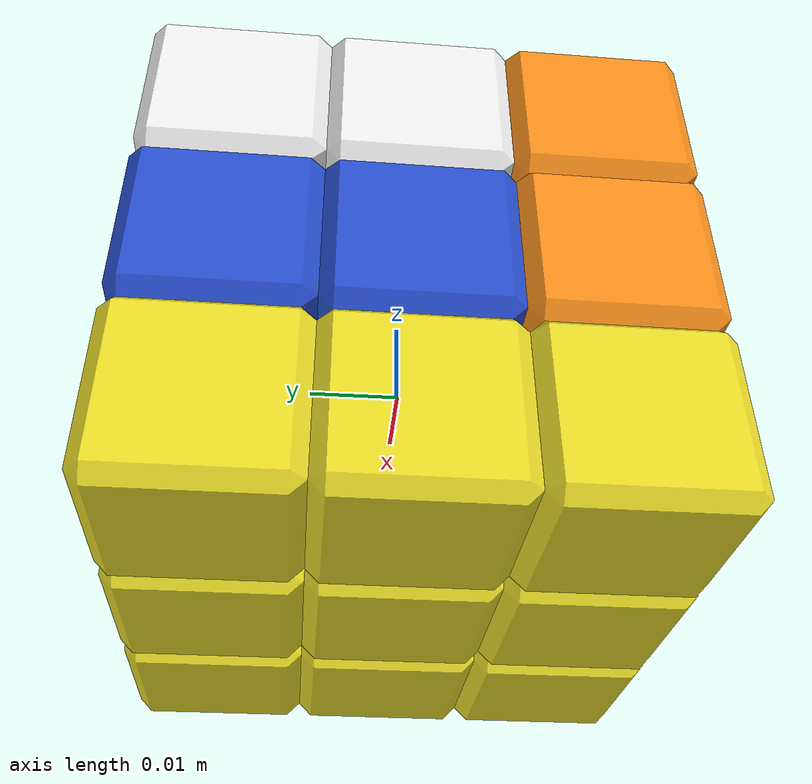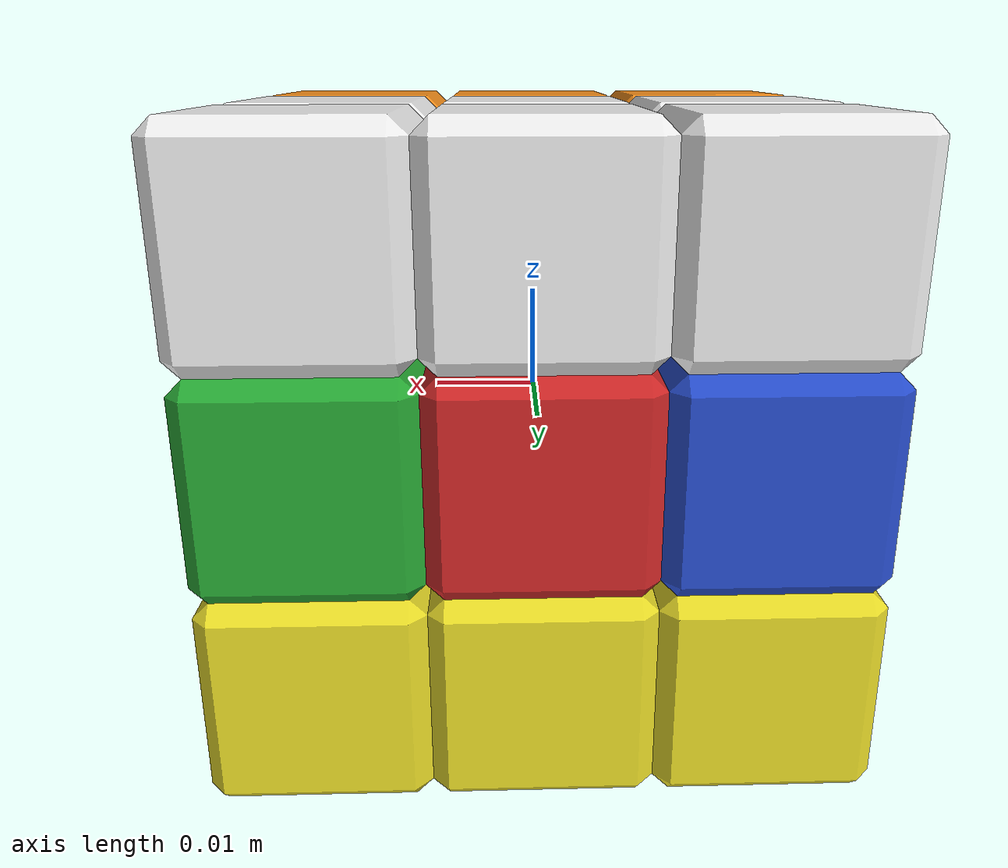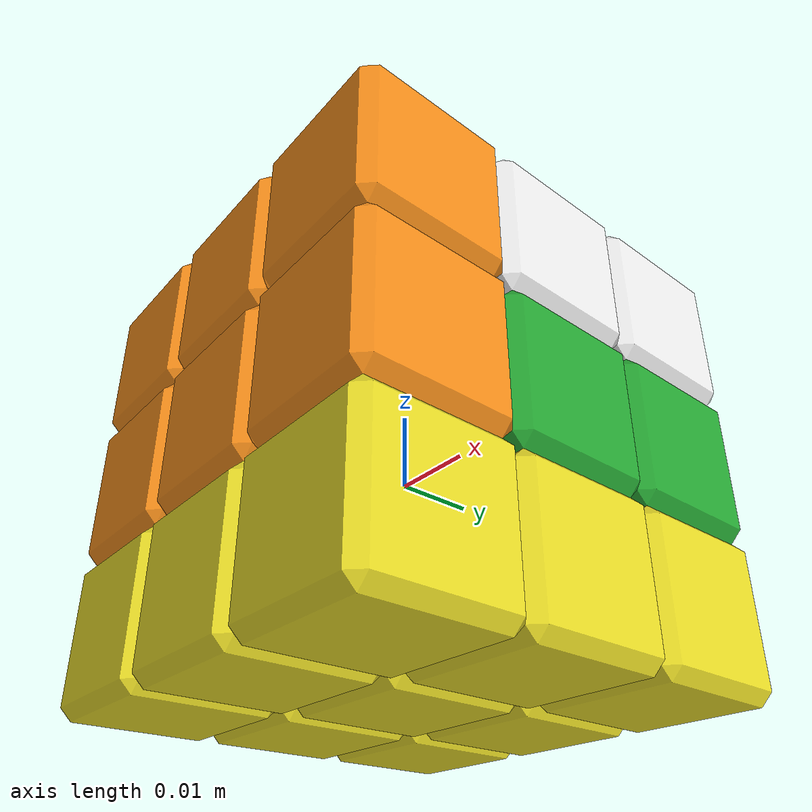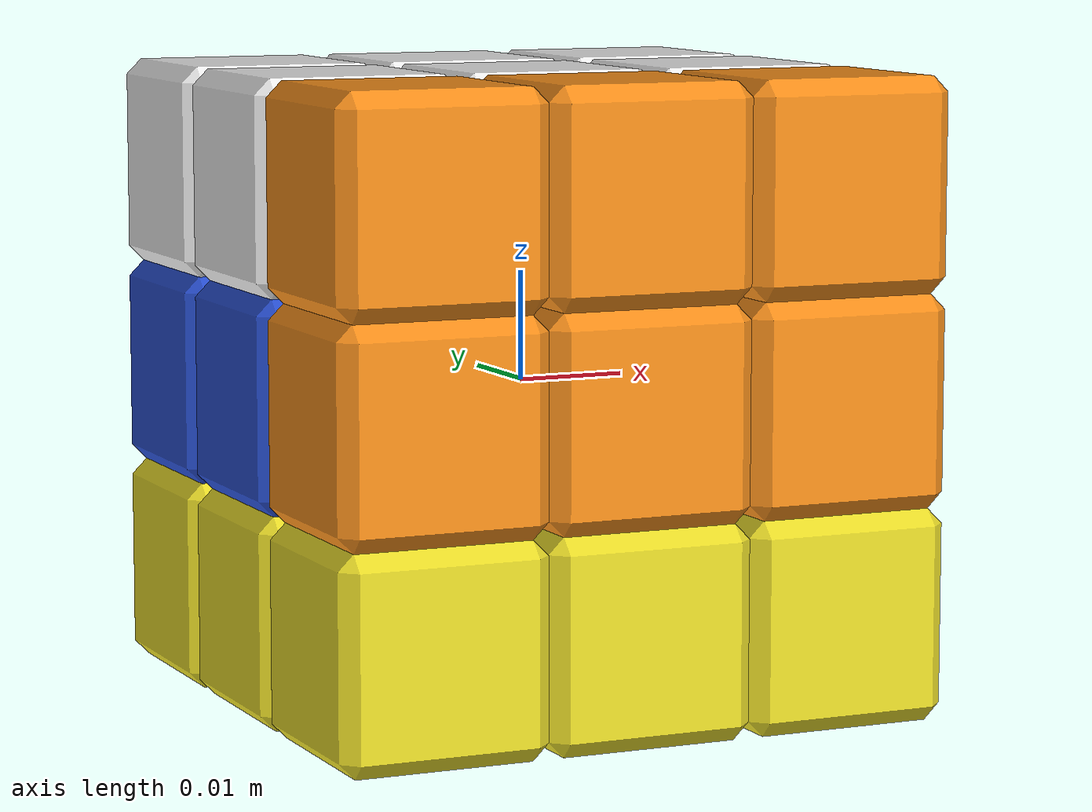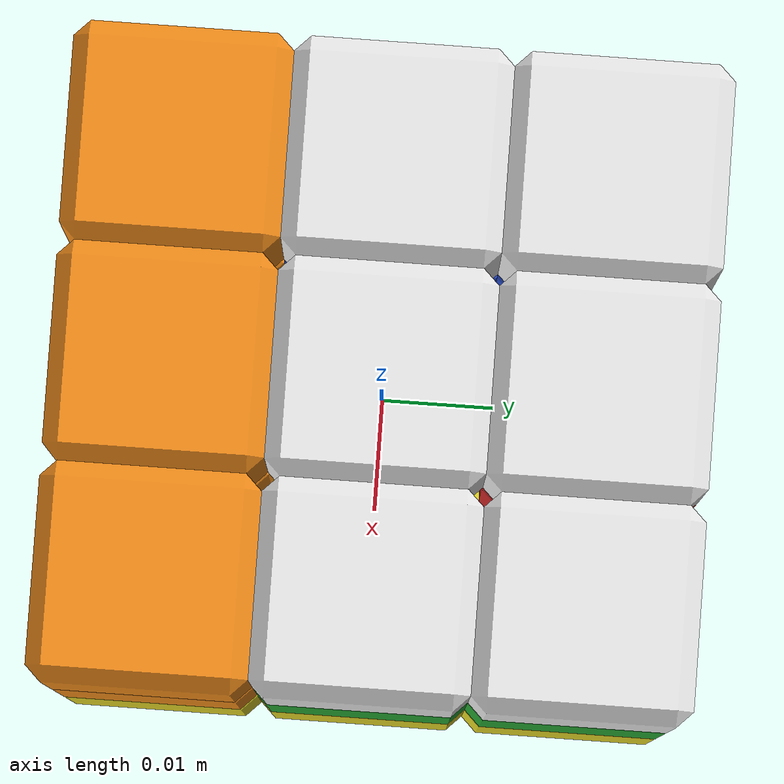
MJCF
<mujoco model="Cube 3x3x3">
  <compiler autolimits="true" texturedir="assets"/>

  <option timestep="0.01" integrator="implicitfast"/>

  <size memory="600K"/>

  <statistic meansize="0.0087" extent="0.1"/>

  <default>
    <geom mass="0.00253704"/>
    <motor ctrlrange="-0.05 0.05"/>
    <default class="cubelet">
      <joint type="ball" armature="0.0001" damping="0.0005" frictionloss="0.001"/>
      <geom type="mesh" condim="1" mesh="cubelet" euler="0 0 90" contype="1" conaffinity="1"/>
    </default>
    <default class="core">
      <geom type="sphere" contype="0" conaffinity="0" group="4" size="0.01"/>
    </default>
    <default class="grasp_marker">
      <site type="capsule" group="5" size="0.3"/>
    </default>
  </default>

  <asset>
    <texture rgb1="0 0 0" gridsize="3 4" gridlayout=".....F......" file="white.png"/>
    <texture rgb1="0 0 0" gridsize="3 4" gridlayout=".....B......" file="yellow.png"/>
    <texture rgb1="0 0 0" gridsize="3 4" gridlayout=".....D......" file="red.png"/>
    <texture rgb1="0 0 0" gridsize="3 4" gridlayout=".....U......" file="orange.png"/>
    <texture rgb1="0 0 0" gridsize="3 4" gridlayout=".....R......" file="blue.png"/>
    <texture rgb1="0 0 0" gridsize="3 4" gridlayout=".....L......" file="green.png"/>
    <texture rgb1="0 0 0" gridsize="3 4" gridlayout=".....DF....." file="red_white.png"/>
    <texture rgb1="0 0 0" gridsize="3 4" gridlayout=".....UF....." file="orange_white.png"/>
    <texture rgb1="0 0 0" gridsize="3 4" gridlayout=".....RF....." file="blue_white.png"/>
    <texture rgb1="0 0 0" gridsize="3 4" gridlayout=".....LF....." file="green_white.png"/>
    <texture rgb1="0 0 0" gridsize="3 4" gridlayout=".....DB....." file="red_yellow.png"/>
    <texture rgb1="0 0 0" gridsize="3 4" gridlayout=".....UB....." file="orange_yellow.png"/>
    <texture rgb1="0 0 0" gridsize="3 4" gridlayout=".....RB....." file="blue_yellow.png"/>
    <texture rgb1="0 0 0" gridsize="3 4" gridlayout=".....LB....." file="green_yellow.png"/>
    <texture rgb1="0 0 0" gridsize="3 4" gridlayout=".....UD....." file="orange_red.png"/>
    <texture rgb1="0 0 0" gridsize="3 4" gridlayout=".....RD....." file="blue_red.png"/>
    <texture rgb1="0 0 0" gridsize="3 4" gridlayout=".....LD....." file="green_red.png"/>
    <texture rgb1="0 0 0" gridsize="3 4" gridlayout=".....RU....." file="blue_orange.png"/>
    <texture rgb1="0 0 0" gridsize="3 4" gridlayout=".....LU....." file="green_orange.png"/>
    <texture rgb1="0 0 0" gridsize="3 4" gridlayout=".....RDF...." file="blue_red_white.png"/>
    <texture rgb1="0 0 0" gridsize="3 4" gridlayout=".....LDF...." file="green_red_white.png"/>
    <texture rgb1="0 0 0" gridsize="3 4" gridlayout=".....RUF...." file="blue_orange_white.png"/>
    <texture rgb1="0 0 0" gridsize="3 4" gridlayout=".....LUF...." file="green_orange_white.png"/>
    <texture rgb1="0 0 0" gridsize="3 4" gridlayout=".....RDB...." file="blue_red_yellow.png"/>
    <texture rgb1="0 0 0" gridsize="3 4" gridlayout=".....LDB...." file="green_red_yellow.png"/>
    <texture rgb1="0 0 0" gridsize="3 4" gridlayout=".....RUB...." file="blue_orange_yellow.png"/>
    <texture rgb1="0 0 0" gridsize="3 4" gridlayout=".....LUB...." file="green_orange_yellow.png"/>
    <material name="white" texture="white"/>
    <material name="yellow" texture="yellow"/>
    <material name="red" texture="red"/>
    <material name="orange" texture="orange"/>
    <material name="blue" texture="blue"/>
    <material name="green" texture="green"/>
    <material name="red_white" texture="red_white"/>
    <material name="orange_white" texture="orange_white"/>
    <material name="blue_white" texture="blue_white"/>
    <material name="green_white" texture="green_white"/>
    <material name="red_yellow" texture="red_yellow"/>
    <material name="orange_yellow" texture="orange_yellow"/>
    <material name="blue_yellow" texture="blue_yellow"/>
    <material name="green_yellow" texture="green_yellow"/>
    <material name="orange_red" texture="orange_red"/>
    <material name="blue_red" texture="blue_red"/>
    <material name="green_red" texture="green_red"/>
    <material name="blue_orange" texture="blue_orange"/>
    <material name="green_orange" texture="green_orange"/>
    <material name="blue_red_white" texture="blue_red_white"/>
    <material name="green_red_white" texture="green_red_white"/>
    <material name="blue_orange_white" texture="blue_orange_white"/>
    <material name="green_orange_white" texture="green_orange_white"/>
    <material name="blue_red_yellow" texture="blue_red_yellow"/>
    <material name="green_red_yellow" texture="green_red_yellow"/>
    <material name="blue_orange_yellow" texture="blue_orange_yellow"/>
    <material name="green_orange_yellow" texture="green_orange_yellow"/>
    <mesh name="cubelet" scale="1e-3 1e-3 1e-3"
          vertex="8.075   9.5    -8.075  -8.075   9.5    -8.075   8.075   9.5     8.075
                 -8.075   9.5     8.075  -9.5     8.075  -8.075  -9.5    -8.075  -8.075
                 -9.5     8.075   8.075  -9.5    -8.075   8.075   8.075  -9.5    -8.075
                  8.075  -9.5     8.075  -8.075  -9.5    -8.075  -8.075  -9.5     8.075
                  9.5     8.075   8.075   9.5    -8.075   8.075   9.5     8.075  -8.075
                  9.5    -8.075  -8.075   8.075   8.075   9.5    -8.075   8.075   9.5
                  8.075  -8.075   9.5    -8.075  -8.075   9.5     8.075  -8.075  -9.5
                 -8.075  -8.075  -9.5     8.075   8.075  -9.5    -8.075   8.075  -9.5"/>
  </asset>

  <worldbody>
    <!-- core: logical frame (+X front, +Y right, +Z top) used by rubik_cube.yaml grasp poses -->
    <body name="core">
      <!-- Grasp frames (cube-local, rubik_cube.yaml). Capsule fromto origin -> +axis; R/G/B = X/Y/Z. -->
      <body name="grasp_front" pos="0.2 0 0" quat="0 -0.7071068 0 0.7071068">
        <site name="front_x" class="grasp_marker" fromto="0 0 0 0.8 0 0" rgba="1 0 0 0.95"/>
        <site name="front_y" class="grasp_marker" fromto="0 0 0 0 0.8 0" rgba="0 1 0 0.95"/>
        <site name="front_z" class="grasp_marker" fromto="0 0 0 0 0 0.8" rgba="0 0 1 0.95"/>
      </body>
      <body name="grasp_back" pos="-0.2 0 0" quat="0 0.7071068 0 0.7071068">
        <site name="back_x" class="grasp_marker" fromto="0 0 0 0.8 0 0" rgba="1 0 0 0.95"/>
        <site name="back_y" class="grasp_marker" fromto="0 0 0 0 0.8 0" rgba="0 1 0 0.95"/>
        <site name="back_z" class="grasp_marker" fromto="0 0 0 0 0 0.8" rgba="0 0 1 0.95"/>
      </body>
      <body name="grasp_left" pos="0 -0.2 0" quat="0.5 -0.5 0.5 0.5">
        <site name="left_x" class="grasp_marker" fromto="0 0 0 0.8 0 0" rgba="1 0 0 0.95"/>
        <site name="left_y" class="grasp_marker" fromto="0 0 0 0 0.8 0" rgba="0 1 0 0.95"/>
        <site name="left_z" class="grasp_marker" fromto="0 0 0 0 0 0.8" rgba="0 0 1 0.95"/>
      </body>
      <body name="grasp_right" pos="0 0.2 0" quat="-0.5 -0.5 -0.5 0.5">
        <site name="right_x" class="grasp_marker" fromto="0 0 0 0.8 0 0" rgba="1 0 0 0.95"/>
        <site name="right_y" class="grasp_marker" fromto="0 0 0 0 0.8 0" rgba="0 1 0 0.95"/>
        <site name="right_z" class="grasp_marker" fromto="0 0 0 0 0 0.8" rgba="0 0 1 0.95"/>
      </body>
      <body name="grasp_top" pos="0 0 0.2" quat="0 -0.7071068 0.7071068 0">
        <site name="top_x" class="grasp_marker" fromto="0 0 0 0.8 0 0" rgba="1 0 0 0.95"/>
        <site name="top_y" class="grasp_marker" fromto="0 0 0 0 0.8 0" rgba="0 1 0 0.95"/>
        <site name="top_z" class="grasp_marker" fromto="0 0 0 0 0 0.8" rgba="0 0 1 0.95"/>
      </body>
      <body name="grasp_bottom" pos="0 0 -0.2" quat="0 0 0 1">
        <site name="bottom_x" class="grasp_marker" fromto="0 0 0 0.8 0 0" rgba="1 0 0 0.95"/>
        <site name="bottom_y" class="grasp_marker" fromto="0 0 0 0 0.8 0" rgba="0 1 0 0.95"/>
        <site name="bottom_z" class="grasp_marker" fromto="0 0 0 0 0 0.8" rgba="0 0 1 0.95"/>
      </body>

      <body name="cube_geom" childclass="cubelet" quat="0.7071068 0 0 0.7071068">
      <geom class="core"/>
      <body name="pX">
        <joint name="pX" type="hinge" axis="1 0 0"/>
        <geom material="red" pos="0.019 0 0"/>
      </body>
      <body name="nX">
        <joint name="nX" type="hinge" axis="-1 0 0"/>
        <geom material="orange" pos="-0.019 0 0"/>
      </body>
      <body name="pY">
        <joint name="pY" type="hinge" axis="0 1 0"/>
        <geom material="blue" pos="0 0.019 0"/>
      </body>
      <body name="nY">
        <joint name="nY" type="hinge" axis="0 -1 0"/>
        <geom material="green" pos="0 -0.019 0"/>
      </body>
      <body name="pZ">
        <joint name="pZ" type="hinge" axis="0 0 1"/>
        <geom material="white" pos="0 0 0.019"/>
      </body>
      <body name="nZ">
        <joint name="nZ" type="hinge" axis="0 0 -1"/>
        <geom material="yellow" pos="0 0 -0.019"/>
      </body>
      <body name="pX_pY">
        <joint name="pX_pY"/>
        <geom material="blue_red" pos="0.019 0.019 0"/>
      </body>
      <body name="nY_pX">
        <joint name="nY_pX"/>
        <geom material="green_red" pos="0.019 -0.019 0"/>
      </body>
      <body name="pX_pZ">
        <joint name="pX_pZ"/>
        <geom material="red_white" pos="0.019 0 0.019"/>
      </body>
      <body name="nZ_pX">
        <joint name="nZ_pX"/>
        <geom material="red_yellow" pos="0.019 0 -0.019"/>
      </body>
      <body name="nX_pY">
        <joint name="nX_pY"/>
        <geom material="blue_orange" pos="-0.019 0.019 0"/>
      </body>
      <body name="nX_nY">
        <joint name="nX_nY"/>
        <geom material="green_orange" pos="-0.019 -0.019 0"/>
      </body>
      <body name="nX_pZ">
        <joint name="nX_pZ"/>
        <geom material="orange_white" pos="-0.019 0 0.019"/>
      </body>
      <body name="nX_nZ">
        <joint name="nX_nZ"/>
        <geom material="orange_yellow" pos="-0.019 0 -0.019"/>
      </body>
      <body name="pY_pZ">
        <joint name="pY_pZ"/>
        <geom material="blue_white" pos="0 0.019 0.019"/>
      </body>
      <body name="nZ_pY">
        <joint name="nZ_pY"/>
        <geom material="blue_yellow" pos="0 0.019 -0.019"/>
      </body>
      <body name="nY_pZ">
        <joint name="nY_pZ"/>
        <geom material="green_white" pos="0 -0.019 0.019"/>
      </body>
      <body name="nY_nZ">
        <joint name="nY_nZ"/>
        <geom material="green_yellow" pos="0 -0.019 -0.019"/>
      </body>
      <body name="pX_pY_pZ">
        <joint name="pX_pY_pZ"/>
        <geom material="blue_red_white" pos="0.019 0.019 0.019"/>
      </body>
      <body name="nZ_pX_pY">
        <joint name="nZ_pX_pY"/>
        <geom material="blue_red_yellow" pos="0.019 0.019 -0.019"/>
      </body>
      <body name="nY_pX_pZ">
        <joint name="nY_pX_pZ"/>
        <geom material="green_red_white" pos="0.019 -0.019 0.019"/>
      </body>
      <body name="nY_nZ_pX">
        <joint name="nY_nZ_pX"/>
        <geom material="green_red_yellow" pos="0.019 -0.019 -0.019"/>
      </body>
      <body name="nX_pY_pZ">
        <joint name="nX_pY_pZ"/>
        <geom material="blue_orange_white" pos="-0.019 0.019 0.019"/>
      </body>
      <body name="nX_nZ_pY">
        <joint name="nX_nZ_pY"/>
        <geom material="blue_orange_yellow" pos="-0.019 0.019 -0.019"/>
      </body>
      <body name="nX_nY_pZ">
        <joint name="nX_nY_pZ"/>
        <geom material="green_orange_white" pos="-0.019 -0.019 0.019"/>
      </body>
      <body name="nX_nY_nZ">
        <joint name="nX_nY_nZ"/>
        <geom material="green_orange_yellow" pos="-0.019 -0.019 -0.019"/>
      </body>
      </body>
    </body>
  </worldbody>

  <actuator>
    <motor name="red" joint="pX"/>
    <motor name="orange" joint="nX"/>
    <motor name="blue" joint="pY"/>
    <motor name="green" joint="nY"/>
    <motor name="white" joint="pZ"/>
    <motor name="yellow" joint="nZ"/>
  </actuator>
</mujoco>
